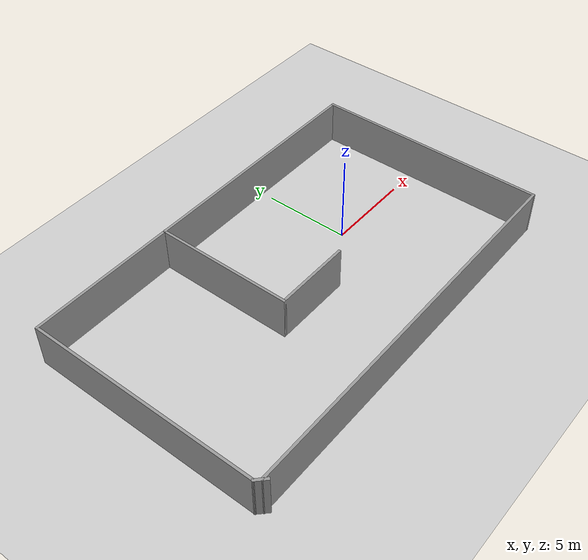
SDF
<sdf version="1.7">
 <world name="default">
  <light name="sun" type="directional">
   <pose>0 0 10 0 -0 0</pose>
   <diffuse>0.8 0.8 0.8 1</diffuse>
   <specular>0.2 0.2 0.2 1</specular>
   <attenuation>
    <range>1000</range>
    <constant>0.9</constant>
    <linear>0.01</linear>
    <quadratic>0.001</quadratic>
   </attenuation>
   <direction>-0.5 0.1 -0.9</direction>
   <spot><inner_angle>0</inner_angle><outer_angle>0</outer_angle><falloff>0</falloff></spot>
  </light>
  <model name="ground_plane">
   <static>1</static>
   <link name="link">
    <collision name="collision">
     <geometry><plane><normal>0 0 1</normal><size>100 100</size></plane></geometry>
     <surface>
      <contact><collide_bitmask>65535</collide_bitmask></contact>
      <friction><ode><mu>100</mu><mu2>50</mu2></ode></friction>
     </surface>
    </collision>
    <visual name="visual">
     <cast_shadows>0</cast_shadows>
     <geometry><plane><normal>0 0 1</normal><size>100 100</size></plane></geometry>
     <material>
      <script><uri>file://media/materials/scripts/gazebo.material</uri><name>Gazebo/Grey</name></script>
     </material>
    </visual>
   </link>
  </model>
  <gravity>0 0 -9.8</gravity>
  <magnetic_field>6e-06 2.3e-05 -4.2e-05</magnetic_field>
  <atmosphere type="adiabatic"/>
  <physics type="ode">
   <max_step_size>0.001</max_step_size>
   <real_time_factor>1</real_time_factor>
   <real_time_update_rate>1000</real_time_update_rate>
  </physics>
  <scene><ambient>0.4 0.4 0.4 1</ambient><background>0.7 0.7 0.7 1</background><shadows>1</shadows></scene>
  <spherical_coordinates>
   <surface_model>EARTH_WGS84</surface_model>
   <latitude_deg>0</latitude_deg>
   <longitude_deg>0</longitude_deg>
   <elevation>0</elevation>
   <heading_deg>0</heading_deg>
  </spherical_coordinates>
  <model name="Untitled">
   <pose>-4.66264 -1.04772 0 0 -0 0</pose>
   <link name="Wall_10">
    <collision name="Wall_10_Collision">
     <geometry><box><size>13.25 0.15 2.5</size></box></geometry>
     <pose>0 0 1.25 0 -0 0</pose>
    </collision>
    <visual name="Wall_10_Visual">
     <pose>0 0 1.25 0 -0 0</pose>
     <geometry><box><size>13.25 0.15 2.5</size></box></geometry>
     <material>
      <script><uri>file://media/materials/scripts/gazebo.material</uri><name>Gazebo/Grey</name></script>
      <ambient>1 1 1 1</ambient>
     </material>
     <meta><layer>0</layer></meta>
    </visual>
    <pose>-11.2845 0.224215 0 0 -0 -1.5708</pose>
   </link>
   <link name="Wall_11">
    <collision name="Wall_11_Collision">
     <geometry><box><size>0.75 0.15 2.5</size></box></geometry>
     <pose>0 0 1.25 0 -0 0</pose>
    </collision>
    <visual name="Wall_11_Visual">
     <pose>0 0 1.25 0 -0 0</pose>
     <geometry><box><size>0.75 0.15 2.5</size></box></geometry>
     <material>
      <script><uri>file://media/materials/scripts/gazebo.material</uri><name>Gazebo/Grey</name></script>
      <ambient>1 1 1 1</ambient>
     </material>
     <meta><layer>0</layer></meta>
    </visual>
    <pose>-11.0723 -6.53792 0 0 -0 -0.785398</pose>
   </link>
   <link name="Wall_13">
    <collision name="Wall_13_Collision">
     <geometry><box><size>8 0.15 2.5</size></box></geometry>
     <pose>0 0 1.25 0 -0 0</pose>
    </collision>
    <visual name="Wall_13_Visual">
     <pose>0 0 1.25 0 -0 0</pose>
     <geometry><box><size>8 0.15 2.5</size></box></geometry>
     <material>
      <script><uri>file://media/materials/scripts/gazebo.material</uri><name>Gazebo/Grey</name></script>
      <ambient>1 1 1 1</ambient>
     </material>
     <meta><layer>0</layer></meta>
    </visual>
    <pose>-2.89174 2.85611 0 0 -0 -1.5708</pose>
   </link>
   <link name="Wall_14">
    <collision name="Wall_14_Collision">
     <geometry><box><size>4.5 0.15 2.5</size></box></geometry>
     <pose>0 0 1.25 0 -0 0</pose>
    </collision>
    <visual name="Wall_14_Visual">
     <pose>0 0 1.25 0 -0 0</pose>
     <geometry><box><size>4.5 0.15 2.5</size></box></geometry>
     <material>
      <script><uri>file://media/materials/scripts/gazebo.material</uri><name>Gazebo/Grey</name></script>
      <ambient>1 1 1 1</ambient>
     </material>
     <meta><layer>0</layer></meta>
    </visual>
    <pose>-0.716735 -1.06889 0 0 -0 0</pose>
   </link>
   <link name="Wall_7">
    <collision name="Wall_7_Collision">
     <geometry><box><size>22.5 0.15 2.5</size></box></geometry>
     <pose>0 0 1.25 0 -0 0</pose>
    </collision>
    <visual name="Wall_7_Visual">
     <pose>0 0 1.25 0 -0 0</pose>
     <geometry><box><size>22.5 0.15 2.5</size></box></geometry>
     <material>
      <script><uri>file://media/materials/scripts/gazebo.material</uri><name>Gazebo/Grey</name></script>
      <ambient>1 1 1 1</ambient>
     </material>
     <meta><layer>0</layer></meta>
    </visual>
    <pose>0.140532 -6.57578 0 0 -0 0</pose>
   </link>
   <link name="Wall_8">
    <collision name="Wall_8_Collision">
     <geometry><box><size>13.5 0.15 2.5</size></box></geometry>
     <pose>0 0 1.25 0 -0 0</pose>
    </collision>
    <visual name="Wall_8_Visual">
     <pose>0 0 1.25 0 -0 0</pose>
     <geometry><box><size>13.5 0.15 2.5</size></box></geometry>
     <material>
      <script><uri>file://media/materials/scripts/gazebo.material</uri><name>Gazebo/Grey</name></script>
      <ambient>1 1 1 1</ambient>
     </material>
     <meta><layer>0</layer></meta>
    </visual>
    <pose>11.3155 0.099215 0 0 -0 1.5708</pose>
   </link>
   <link name="Wall_9">
    <collision name="Wall_9_Collision">
     <geometry><box><size>22.75 0.15 2.5</size></box></geometry>
     <pose>0 0 1.25 0 -0 0</pose>
    </collision>
    <visual name="Wall_9_Visual">
     <pose>0 0 1.25 0 -0 0</pose>
     <geometry><box><size>22.75 0.15 2.5</size></box></geometry>
     <material>
      <script><uri>file://media/materials/scripts/gazebo.material</uri><name>Gazebo/Grey</name></script>
      <ambient>1 1 1 1</ambient>
     </material>
     <meta><layer>0</layer></meta>
    </visual>
    <pose>0.015532 6.77421 0 0 -0 3.14159</pose>
   </link>
   <static>1</static>
  </model>
 </world>
</sdf>
